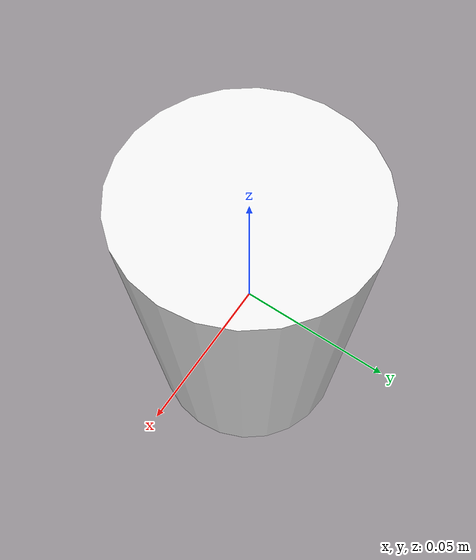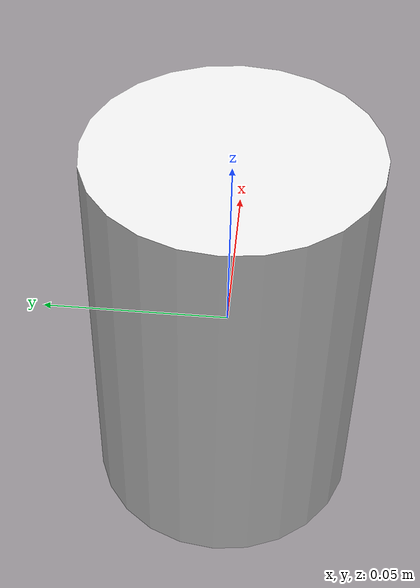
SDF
<?xml version="1.0"?>
<sdf version="1.6">
  <model name="Eurobot Cans Model">
    <static>false</static>
    <link name="cans">
      <collision name="cans_collision">
        <geometry>
          <cylinder>
            <length>0.11</length>
            <radius>0.0365</radius>
          </cylinder>
        </geometry>
        <surface>
          <friction>
            <ode>
              <mu>0.5</mu>
              <mu2>0.5</mu2>
            </ode>
          </friction>
        </surface>
        <!-- Spring stiffness -->
            <!-- Damping coefficient -->
      </collision>
      <inertial>
        <inertia> <!-- Iniertia parameters 10x smaller then the correct values to be more stable in simulation -->
          <ixx>0.000084</ixx>
          <ixy>0</ixy>
          <ixz>0</ixz>
          <iyy>0.000084</iyy>
          <iyz>0</iyz>
          <izz>0.000042</izz>
        </inertia>
        <mass>0.04</mass>
      </inertial>
      <visual name="cans_visual">
        <geometry>
          <cylinder>
            <length>0.11</length>
            <radius>0.0365</radius>
          </cylinder>
        </geometry>
        <material>
          <ambient>0.9 0.9 0.9 1.0</ambient>
          <diffuse>0.9 0.9 0.9 1.0</diffuse>
          <specular>0.1 0.1 0.1 1</specular>
          <emissive>0 0 0 0</emissive>
        </material>
      </visual>
    </link>
  </model>
</sdf>
